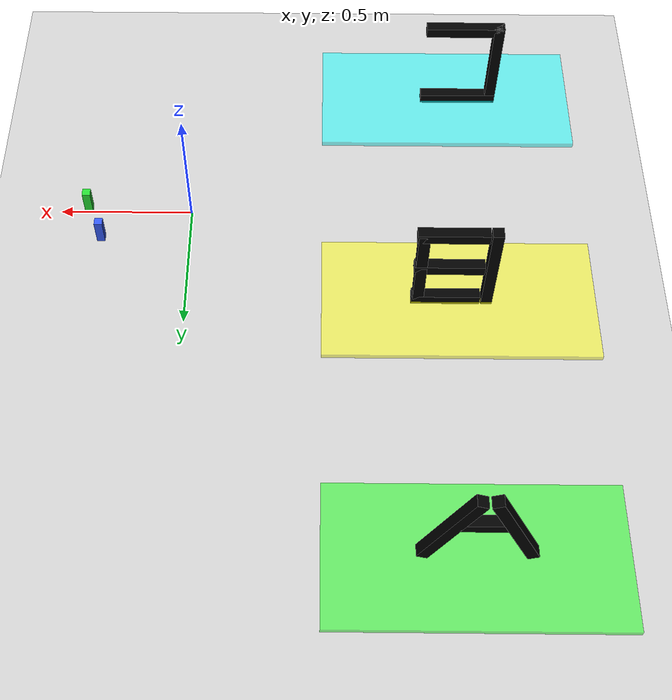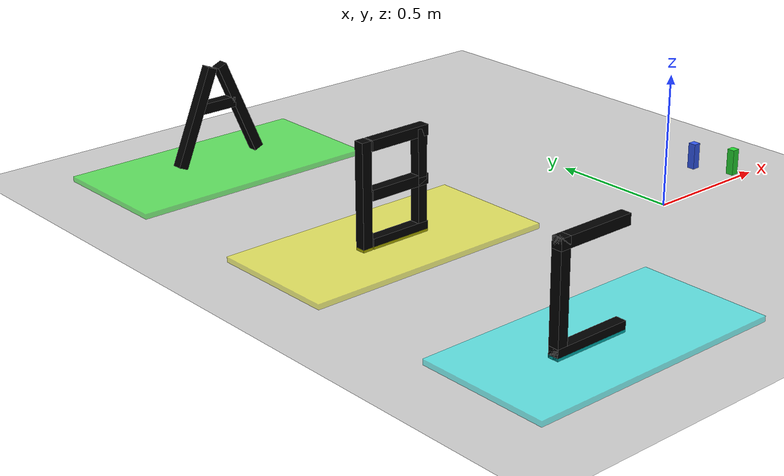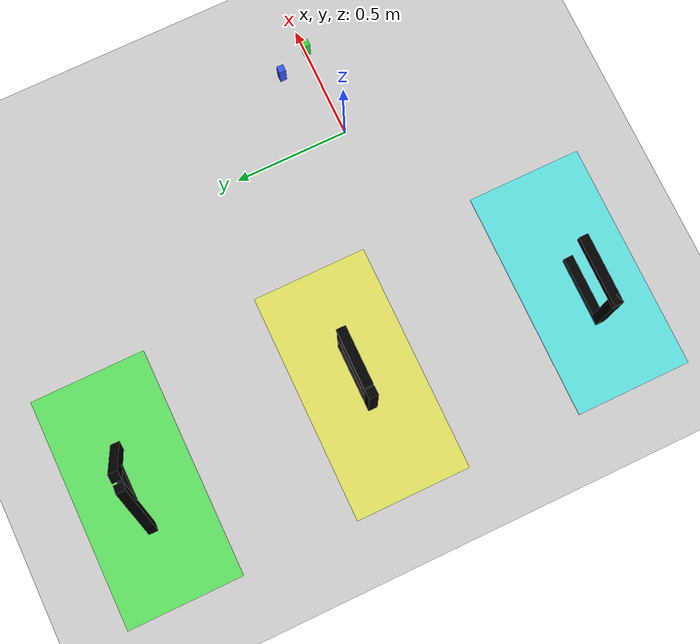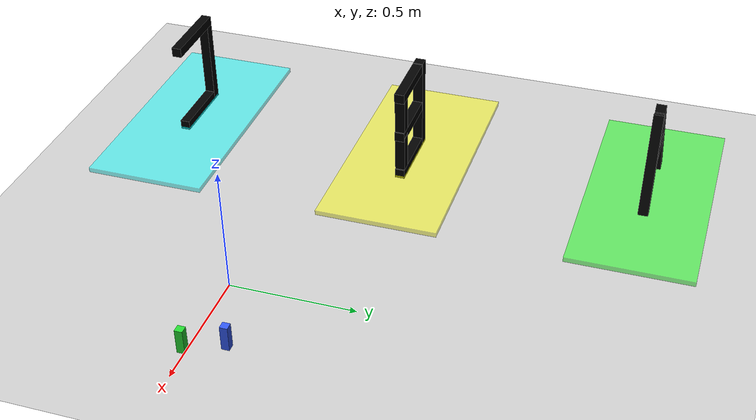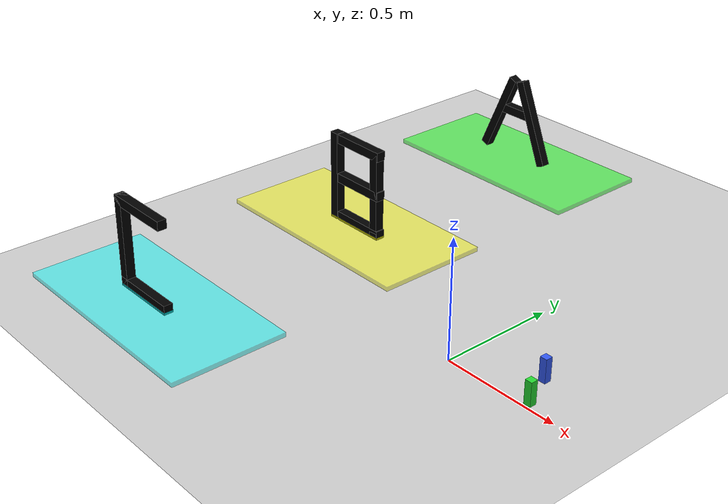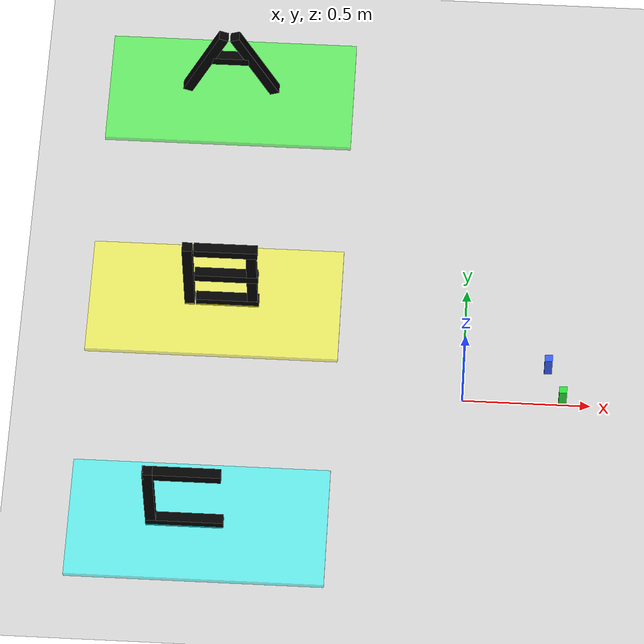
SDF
<sdf version="1.4">
 <world name="default">
  <model name="ground_plane">
   <static>1</static>
   <link name="link">
    <collision name="collision">
     <geometry><plane><normal>0 0 1</normal><size>100 100</size></plane></geometry>
     <surface><friction><ode><mu>100</mu><mu2>50</mu2></ode></friction></surface>
    </collision>
    <visual name="visual">
     <cast_shadows>0</cast_shadows>
     <geometry><plane><normal>0 0 1</normal><size>100 100</size></plane></geometry>
     <material>
      <script><uri>file://media/materials/scripts/gazebo.material</uri><name>Gazebo/Grey</name></script>
     </material>
    </visual>
    <velocity_decay><linear>0</linear><angular>0</angular></velocity_decay>
   </link>
  </model>
  <model name="zone_a">
   <static>true</static>
   <pose>-1.0 1.40 0.01 0 0 0</pose>
   <link name="base">
    <visual name="visual">
     <geometry><box><size>1.0 0.5 0.02</size></box></geometry>
     <material><ambient>0 1 0 0.5</ambient><diffuse>0 1 0 0.5</diffuse></material>
    </visual>
   </link>
   <link name="letter_A_1">
    <pose>-0.1 0 0.22 0 0.4 0</pose>
    <visual name="v">
     <geometry><box><size>0.04 0.04 0.4</size></box></geometry>
     <material><ambient>0 0 0 1</ambient><diffuse>0 0 0 1</diffuse></material>
    </visual>
   </link>
   <link name="letter_A_2">
    <pose>0.1 0 0.22 0 -0.4 0</pose>
    <visual name="v">
     <geometry><box><size>0.04 0.04 0.4</size></box></geometry>
     <material><ambient>0 0 0 1</ambient><diffuse>0 0 0 1</diffuse></material>
    </visual>
   </link>
   <link name="letter_A_3">
    <pose>0 0 0.25 0 0 0</pose>
    <visual name="v">
     <geometry><box><size>0.15 0.04 0.04</size></box></geometry>
     <material><ambient>0 0 0 1</ambient><diffuse>0 0 0 1</diffuse></material>
    </visual>
   </link>
  </model>
  <model name="zone_b">
   <static>true</static>
   <pose>-1.0 0.40 0.01 0 0 0</pose>
   <link name="base">
    <visual name="visual">
     <geometry><box><size>1.0 0.5 0.02</size></box></geometry>
     <material><ambient>1 1 0 0.5</ambient><diffuse>1 1 0 0.5</diffuse></material>
    </visual>
   </link>
   <link name="letter_B_vertical_stroke">
    <pose>-0.1 0 0.2 0 0 0</pose>
    <visual name="v">
     <geometry><box><size>0.04 0.04 0.4</size></box></geometry>
     <material><ambient>0 0 0 1</ambient><diffuse>0 0 0 1</diffuse></material>
    </visual>
   </link>
   <link name="letter_B_top_horizontal">
    <pose>0.05 0 0.38 0 0 0</pose>
    <visual name="v">
     <geometry><box><size>0.25 0.04 0.04</size></box></geometry>
     <material><ambient>0 0 0 1</ambient><diffuse>0 0 0 1</diffuse></material>
    </visual>
   </link>
   <link name="letter_B_middle_horizontal">
    <pose>0.05 0 0.2 0 0 0</pose>
    <visual name="v">
     <geometry><box><size>0.25 0.04 0.04</size></box></geometry>
     <material><ambient>0 0 0 1</ambient><diffuse>0 0 0 1</diffuse></material>
    </visual>
   </link>
   <link name="letter_B_bottom_horizontal">
    <pose>0.05 0 0.02 0 0 0</pose>
    <visual name="v">
     <geometry><box><size>0.25 0.04 0.04</size></box></geometry>
     <material><ambient>0 0 0 1</ambient><diffuse>0 0 0 1</diffuse></material>
    </visual>
   </link>
   <link name="letter_B_top_vertical_stroke">
    <pose>0.15 0 0.29 0 0 0</pose>
    <visual name="v">
     <geometry><box><size>0.04 0.04 0.2</size></box></geometry>
     <material><ambient>0 0 0 1</ambient><diffuse>0 0 0 1</diffuse></material>
    </visual>
   </link>
   <link name="letter_B_bottom_vertical_stroke">
    <pose>0.15 0 0.11 0 0 0</pose>
    <visual name="v">
     <geometry><box><size>0.04 0.04 0.2</size></box></geometry>
     <material><ambient>0 0 0 1</ambient><diffuse>0 0 0 1</diffuse></material>
    </visual>
   </link>
  </model>
  <model name="zone_c">
   <static>true</static>
   <pose>-1.0 -0.60 0.01 0 0 0</pose>
   <link name="base">
    <visual name="visual">
     <geometry><box><size>1.0 0.5 0.02</size></box></geometry>
     <material><ambient>0 1 1 0.5</ambient><diffuse>0 1 1 0.5</diffuse></material>
    </visual>
   </link>
   <link name="letter_C_1">
    <pose>-0.05 0 0.38 0 0 0</pose>
    <visual name="v">
     <geometry><box><size>0.3 0.04 0.04</size></box></geometry>
     <material><ambient>0 0 0 1</ambient><diffuse>0 0 0 1</diffuse></material>
    </visual>
   </link>
   <link name="letter_C_2">
    <pose>-0.05 0 0.02 0 0 0</pose>
    <visual name="v">
     <geometry><box><size>0.3 0.04 0.04</size></box></geometry>
     <material><ambient>0 0 0 1</ambient><diffuse>0 0 0 1</diffuse></material>
    </visual>
   </link>
   <link name="letter_C_3">
    <pose>-0.18 0 0.2 0 0 0</pose>
    <visual name="v">
     <geometry><box><size>0.04 0.04 0.4</size></box></geometry>
     <material><ambient>0 0 0 1</ambient><diffuse>0 0 0 1</diffuse></material>
    </visual>
   </link>
  </model>
  <model name="moveit_pick_stand">
   <static>true</static>
   <pose>0.390 0.000 0.073 0 0 0</pose>
   <link name="stand">
    <collision name="collision"><geometry><box><size>0.03 0.03 0.10</size></box></geometry></collision>
    <visual name="visual">
     <geometry><box><size>0.03 0.03 0.10</size></box></geometry>
     <material><ambient>0.15 0.85 0.20 1</ambient><diffuse>0.15 0.85 0.20 1</diffuse></material>
    </visual>
   </link>
  </model>
  <model name="moveit_place_stand">
   <static>true</static>
   <pose>0.330 0.140 0.073 0 0 0</pose>
   <link name="stand">
    <collision name="collision"><geometry><box><size>0.03 0.03 0.10</size></box></geometry></collision>
    <visual name="visual">
     <geometry><box><size>0.03 0.03 0.10</size></box></geometry>
     <material><ambient>0.20 0.35 0.95 1</ambient><diffuse>0.20 0.35 0.95 1</diffuse></material>
    </visual>
   </link>
  </model>
 </world>
</sdf>
